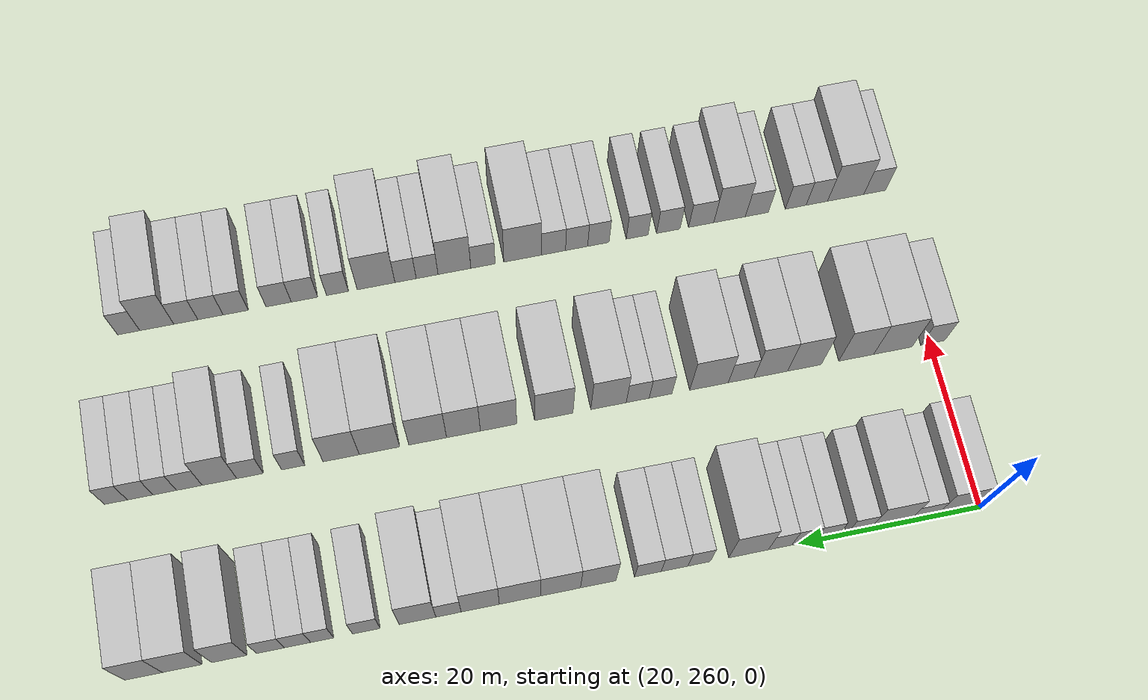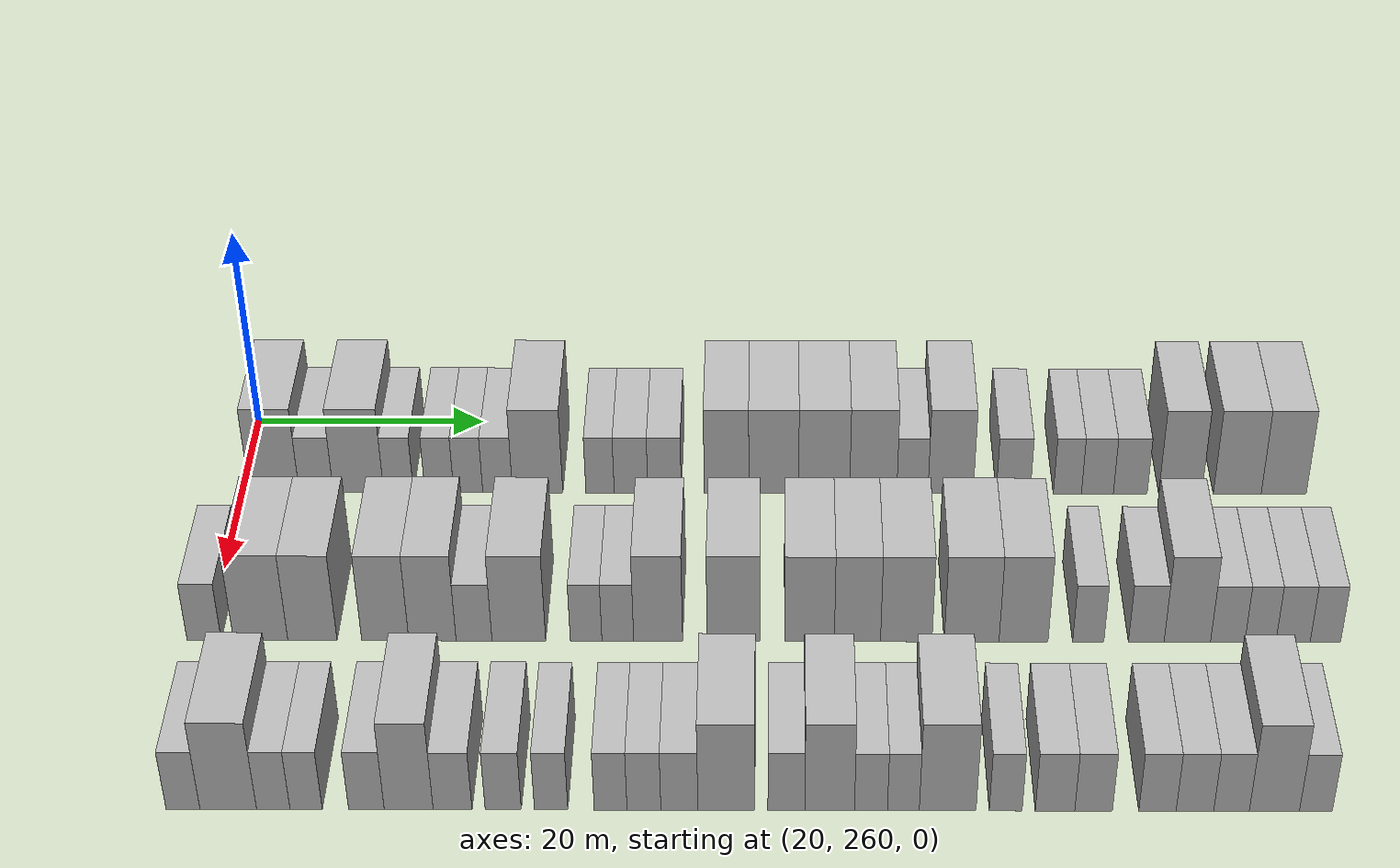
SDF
<sdf version="1.6">
 <world name="default">
  <model name="building_142">
   <static>1</static>
   <pose>25.0000 262.7452 0 0.000000 0.000000 0.000000</pose>
   <link name="link">
    <pose>0 0 4.50 0 0 0</pose>
    <collision name="collision"><geometry><box><size>10.0000 4.3088 9.0000</size></box></geometry></collision>
    <visual name="visual">
     <cast_shadows>0</cast_shadows>
     <geometry><box><size>10.0000 4.3088 9.0000</size></box></geometry>
     <material>
      <script>
       <uri>model://HANNAS_wall/materials/scripts</uri>
       <uri>model://HANNAS_wall/materials/textures</uri>
       <name>vrc/HANNAS_wall</name>
      </script>
     </material>
    </visual>
   </link>
  </model>
  <model name="building_143">
   <static>1</static>
   <pose>25.0000 266.3724 0 0.000000 0.000000 0.000000</pose>
   <link name="link">
    <pose>0 0 3.00 0 0 0</pose>
    <collision name="collision"><geometry><box><size>10.0000 2.9457 6.0000</size></box></geometry></collision>
    <visual name="visual">
     <cast_shadows>0</cast_shadows>
     <geometry><box><size>10.0000 2.9457 6.0000</size></box></geometry>
     <material>
      <script>
       <uri>model://HANNAS_wall/materials/scripts</uri>
       <uri>model://HANNAS_wall/materials/textures</uri>
       <name>vrc/HANNAS_wall</name>
      </script>
     </material>
    </visual>
   </link>
  </model>
  <model name="building_144">
   <static>1</static>
   <pose>25.0000 270.0261 0 0.000000 0.000000 0.000000</pose>
   <link name="link">
    <pose>0 0 4.50 0 0 0</pose>
    <collision name="collision"><geometry><box><size>10.0000 4.3617 9.0000</size></box></geometry></collision>
    <visual name="visual">
     <cast_shadows>0</cast_shadows>
     <geometry><box><size>10.0000 4.3617 9.0000</size></box></geometry>
     <material>
      <script>
       <uri>model://HANNAS_wall/materials/scripts</uri>
       <uri>model://HANNAS_wall/materials/textures</uri>
       <name>vrc/HANNAS_wall</name>
      </script>
     </material>
    </visual>
   </link>
  </model>
  <model name="building_145">
   <static>1</static>
   <pose>25.0000 273.4916 0 0.000000 0.000000 0.000000</pose>
   <link name="link">
    <pose>0 0 3.00 0 0 0</pose>
    <collision name="collision"><geometry><box><size>10.0000 2.5693 6.0000</size></box></geometry></collision>
    <visual name="visual">
     <cast_shadows>0</cast_shadows>
     <geometry><box><size>10.0000 2.5693 6.0000</size></box></geometry>
     <material>
      <script>
       <uri>model://HANNAS_wall/materials/scripts</uri>
       <uri>model://HANNAS_wall/materials/textures</uri>
       <name>vrc/HANNAS_wall</name>
      </script>
     </material>
    </visual>
   </link>
  </model>
  <model name="building_146">
   <static>1</static>
   <pose>25.0000 277.0207 0 0.000000 0.000000 0.000000</pose>
   <link name="link">
    <pose>0 0 3.00 0 0 0</pose>
    <collision name="collision"><geometry><box><size>10.0000 2.4890 6.0000</size></box></geometry></collision>
    <visual name="visual">
     <cast_shadows>0</cast_shadows>
     <geometry><box><size>10.0000 2.4890 6.0000</size></box></geometry>
     <material>
      <script>
       <uri>model://HANNAS_wall/materials/scripts</uri>
       <uri>model://HANNAS_wall/materials/textures</uri>
       <name>vrc/HANNAS_wall</name>
      </script>
     </material>
    </visual>
   </link>
  </model>
  <model name="building_147">
   <static>1</static>
   <pose>25.0000 279.5189 0 0.000000 0.000000 0.000000</pose>
   <link name="link">
    <pose>0 0 3.00 0 0 0</pose>
    <collision name="collision"><geometry><box><size>10.0000 2.5074 6.0000</size></box></geometry></collision>
    <visual name="visual">
     <cast_shadows>0</cast_shadows>
     <geometry><box><size>10.0000 2.5074 6.0000</size></box></geometry>
     <material>
      <script>
       <uri>model://HANNAS_wall/materials/scripts</uri>
       <uri>model://HANNAS_wall/materials/textures</uri>
       <name>vrc/HANNAS_wall</name>
      </script>
     </material>
    </visual>
   </link>
  </model>
  <model name="building_148">
   <static>1</static>
   <pose>25.0000 282.0628 0 0.000000 0.000000 0.000000</pose>
   <link name="link">
    <pose>0 0 3.00 0 0 0</pose>
    <collision name="collision"><geometry><box><size>10.0000 2.5806 6.0000</size></box></geometry></collision>
    <visual name="visual">
     <cast_shadows>0</cast_shadows>
     <geometry><box><size>10.0000 2.5806 6.0000</size></box></geometry>
     <material>
      <script>
       <uri>model://HANNAS_wall/materials/scripts</uri>
       <uri>model://HANNAS_wall/materials/textures</uri>
       <name>vrc/HANNAS_wall</name>
      </script>
     </material>
    </visual>
   </link>
  </model>
  <model name="building_149">
   <static>1</static>
   <pose>25.0000 285.5217 0 0.000000 0.000000 0.000000</pose>
   <link name="link">
    <pose>0 0 4.50 0 0 0</pose>
    <collision name="collision"><geometry><box><size>10.0000 4.3372 9.0000</size></box></geometry></collision>
    <visual name="visual">
     <cast_shadows>0</cast_shadows>
     <geometry><box><size>10.0000 4.3372 9.0000</size></box></geometry>
     <material>
      <script>
       <uri>model://HANNAS_wall/materials/scripts</uri>
       <uri>model://HANNAS_wall/materials/textures</uri>
       <name>vrc/HANNAS_wall</name>
      </script>
     </material>
    </visual>
   </link>
  </model>
  <model name="building_150">
   <static>1</static>
   <pose>25.0000 290.9131 0 0.000000 0.000000 0.000000</pose>
   <link name="link">
    <pose>0 0 3.00 0 0 0</pose>
    <collision name="collision"><geometry><box><size>10.0000 2.4456 6.0000</size></box></geometry></collision>
    <visual name="visual">
     <cast_shadows>0</cast_shadows>
     <geometry><box><size>10.0000 2.4456 6.0000</size></box></geometry>
     <material>
      <script>
       <uri>model://HANNAS_wall/materials/scripts</uri>
       <uri>model://HANNAS_wall/materials/textures</uri>
       <name>vrc/HANNAS_wall</name>
      </script>
     </material>
    </visual>
   </link>
  </model>
  <model name="building_151">
   <static>1</static>
   <pose>25.0000 293.5924 0 0.000000 0.000000 0.000000</pose>
   <link name="link">
    <pose>0 0 3.00 0 0 0</pose>
    <collision name="collision"><geometry><box><size>10.0000 2.9130 6.0000</size></box></geometry></collision>
    <visual name="visual">
     <cast_shadows>0</cast_shadows>
     <geometry><box><size>10.0000 2.9130 6.0000</size></box></geometry>
     <material>
      <script>
       <uri>model://HANNAS_wall/materials/scripts</uri>
       <uri>model://HANNAS_wall/materials/textures</uri>
       <name>vrc/HANNAS_wall</name>
      </script>
     </material>
    </visual>
   </link>
  </model>
  <model name="building_152">
   <static>1</static>
   <pose>25.0000 296.4909 0 0.000000 0.000000 0.000000</pose>
   <link name="link">
    <pose>0 0 3.00 0 0 0</pose>
    <collision name="collision"><geometry><box><size>10.0000 2.8841 6.0000</size></box></geometry></collision>
    <visual name="visual">
     <cast_shadows>0</cast_shadows>
     <geometry><box><size>10.0000 2.8841 6.0000</size></box></geometry>
     <material>
      <script>
       <uri>model://HANNAS_wall/materials/scripts</uri>
       <uri>model://HANNAS_wall/materials/textures</uri>
       <name>vrc/HANNAS_wall</name>
      </script>
     </material>
    </visual>
   </link>
  </model>
  <model name="building_153">
   <static>1</static>
   <pose>25.0000 301.8531 0 0.000000 0.000000 0.000000</pose>
   <link name="link">
    <pose>0 0 4.50 0 0 0</pose>
    <collision name="collision"><geometry><box><size>10.0000 3.8403 9.0000</size></box></geometry></collision>
    <visual name="visual">
     <cast_shadows>0</cast_shadows>
     <geometry><box><size>10.0000 3.8403 9.0000</size></box></geometry>
     <material>
      <script>
       <uri>model://HANNAS_wall/materials/scripts</uri>
       <uri>model://HANNAS_wall/materials/textures</uri>
       <name>vrc/HANNAS_wall</name>
      </script>
     </material>
    </visual>
   </link>
  </model>
  <model name="building_154">
   <static>1</static>
   <pose>25.0000 305.9178 0 0.000000 0.000000 0.000000</pose>
   <link name="link">
    <pose>0 0 4.50 0 0 0</pose>
    <collision name="collision"><geometry><box><size>10.0000 4.2889 9.0000</size></box></geometry></collision>
    <visual name="visual">
     <cast_shadows>0</cast_shadows>
     <geometry><box><size>10.0000 4.2889 9.0000</size></box></geometry>
     <material>
      <script>
       <uri>model://HANNAS_wall/materials/scripts</uri>
       <uri>model://HANNAS_wall/materials/textures</uri>
       <name>vrc/HANNAS_wall</name>
      </script>
     </material>
    </visual>
   </link>
  </model>
  <model name="building_155">
   <static>1</static>
   <pose>25.0000 310.2695 0 0.000000 0.000000 0.000000</pose>
   <link name="link">
    <pose>0 0 4.50 0 0 0</pose>
    <collision name="collision"><geometry><box><size>10.0000 4.4145 9.0000</size></box></geometry></collision>
    <visual name="visual">
     <cast_shadows>0</cast_shadows>
     <geometry><box><size>10.0000 4.4145 9.0000</size></box></geometry>
     <material>
      <script>
       <uri>model://HANNAS_wall/materials/scripts</uri>
       <uri>model://HANNAS_wall/materials/textures</uri>
       <name>vrc/HANNAS_wall</name>
      </script>
     </material>
    </visual>
   </link>
  </model>
  <model name="building_156">
   <static>1</static>
   <pose>25.0000 314.5128 0 0.000000 0.000000 0.000000</pose>
   <link name="link">
    <pose>0 0 4.50 0 0 0</pose>
    <collision name="collision"><geometry><box><size>10.0000 4.0723 9.0000</size></box></geometry></collision>
    <visual name="visual">
     <cast_shadows>0</cast_shadows>
     <geometry><box><size>10.0000 4.0723 9.0000</size></box></geometry>
     <material>
      <script>
       <uri>model://HANNAS_wall/materials/scripts</uri>
       <uri>model://HANNAS_wall/materials/textures</uri>
       <name>vrc/HANNAS_wall</name>
      </script>
     </material>
    </visual>
   </link>
  </model>
  <model name="building_157">
   <static>1</static>
   <pose>25.0000 317.8948 0 0.000000 0.000000 0.000000</pose>
   <link name="link">
    <pose>0 0 3.00 0 0 0</pose>
    <collision name="collision"><geometry><box><size>10.0000 2.6916 6.0000</size></box></geometry></collision>
    <visual name="visual">
     <cast_shadows>0</cast_shadows>
     <geometry><box><size>10.0000 2.6916 6.0000</size></box></geometry>
     <material>
      <script>
       <uri>model://HANNAS_wall/materials/scripts</uri>
       <uri>model://HANNAS_wall/materials/textures</uri>
       <name>vrc/HANNAS_wall</name>
      </script>
     </material>
    </visual>
   </link>
  </model>
  <model name="building_158">
   <static>1</static>
   <pose>25.0000 321.1952 0 0.000000 0.000000 0.000000</pose>
   <link name="link">
    <pose>0 0 4.50 0 0 0</pose>
    <collision name="collision"><geometry><box><size>10.0000 3.9093 9.0000</size></box></geometry></collision>
    <visual name="visual">
     <cast_shadows>0</cast_shadows>
     <geometry><box><size>10.0000 3.9093 9.0000</size></box></geometry>
     <material>
      <script>
       <uri>model://HANNAS_wall/materials/scripts</uri>
       <uri>model://HANNAS_wall/materials/textures</uri>
       <name>vrc/HANNAS_wall</name>
      </script>
     </material>
    </visual>
   </link>
  </model>
  <model name="building_159">
   <static>1</static>
   <pose>25.0000 326.6145 0 0.000000 0.000000 0.000000</pose>
   <link name="link">
    <pose>0 0 3.00 0 0 0</pose>
    <collision name="collision"><geometry><box><size>10.0000 2.9293 6.0000</size></box></geometry></collision>
    <visual name="visual">
     <cast_shadows>0</cast_shadows>
     <geometry><box><size>10.0000 2.9293 6.0000</size></box></geometry>
     <material>
      <script>
       <uri>model://HANNAS_wall/materials/scripts</uri>
       <uri>model://HANNAS_wall/materials/textures</uri>
       <name>vrc/HANNAS_wall</name>
      </script>
     </material>
    </visual>
   </link>
  </model>
  <model name="building_160">
   <static>1</static>
   <pose>25.0000 331.2918 0 0.000000 0.000000 0.000000</pose>
   <link name="link">
    <pose>0 0 3.00 0 0 0</pose>
    <collision name="collision"><geometry><box><size>10.0000 2.4254 6.0000</size></box></geometry></collision>
    <visual name="visual">
     <cast_shadows>0</cast_shadows>
     <geometry><box><size>10.0000 2.4254 6.0000</size></box></geometry>
     <material>
      <script>
       <uri>model://HANNAS_wall/materials/scripts</uri>
       <uri>model://HANNAS_wall/materials/textures</uri>
       <name>vrc/HANNAS_wall</name>
      </script>
     </material>
    </visual>
   </link>
  </model>
  <model name="building_161">
   <static>1</static>
   <pose>25.0000 333.8823 0 0.000000 0.000000 0.000000</pose>
   <link name="link">
    <pose>0 0 3.00 0 0 0</pose>
    <collision name="collision"><geometry><box><size>10.0000 2.7556 6.0000</size></box></geometry></collision>
    <visual name="visual">
     <cast_shadows>0</cast_shadows>
     <geometry><box><size>10.0000 2.7556 6.0000</size></box></geometry>
     <material>
      <script>
       <uri>model://HANNAS_wall/materials/scripts</uri>
       <uri>model://HANNAS_wall/materials/textures</uri>
       <name>vrc/HANNAS_wall</name>
      </script>
     </material>
    </visual>
   </link>
  </model>
  <model name="building_162">
   <static>1</static>
   <pose>25.0000 336.7186 0 0.000000 0.000000 0.000000</pose>
   <link name="link">
    <pose>0 0 3.00 0 0 0</pose>
    <collision name="collision"><geometry><box><size>10.0000 2.9170 6.0000</size></box></geometry></collision>
    <visual name="visual">
     <cast_shadows>0</cast_shadows>
     <geometry><box><size>10.0000 2.9170 6.0000</size></box></geometry>
     <material>
      <script>
       <uri>model://HANNAS_wall/materials/scripts</uri>
       <uri>model://HANNAS_wall/materials/textures</uri>
       <name>vrc/HANNAS_wall</name>
      </script>
     </material>
    </visual>
   </link>
  </model>
  <model name="building_163">
   <static>1</static>
   <pose>25.0000 341.0371 0 0.000000 0.000000 0.000000</pose>
   <link name="link">
    <pose>0 0 4.50 0 0 0</pose>
    <collision name="collision"><geometry><box><size>10.0000 3.7200 9.0000</size></box></geometry></collision>
    <visual name="visual">
     <cast_shadows>0</cast_shadows>
     <geometry><box><size>10.0000 3.7200 9.0000</size></box></geometry>
     <material>
      <script>
       <uri>model://HANNAS_wall/materials/scripts</uri>
       <uri>model://HANNAS_wall/materials/textures</uri>
       <name>vrc/HANNAS_wall</name>
      </script>
     </material>
    </visual>
   </link>
  </model>
  <model name="building_164">
   <static>1</static>
   <pose>25.0000 345.9659 0 0.000000 0.000000 0.000000</pose>
   <link name="link">
    <pose>0 0 4.50 0 0 0</pose>
    <collision name="collision"><geometry><box><size>10.0000 4.1377 9.0000</size></box></geometry></collision>
    <visual name="visual">
     <cast_shadows>0</cast_shadows>
     <geometry><box><size>10.0000 4.1377 9.0000</size></box></geometry>
     <material>
      <script>
       <uri>model://HANNAS_wall/materials/scripts</uri>
       <uri>model://HANNAS_wall/materials/textures</uri>
       <name>vrc/HANNAS_wall</name>
      </script>
     </material>
    </visual>
   </link>
  </model>
  <model name="building_165">
   <static>1</static>
   <pose>25.0000 349.9780 0 0.000000 0.000000 0.000000</pose>
   <link name="link">
    <pose>0 0 4.50 0 0 0</pose>
    <collision name="collision"><geometry><box><size>10.0000 3.8864 9.0000</size></box></geometry></collision>
    <visual name="visual">
     <cast_shadows>0</cast_shadows>
     <geometry><box><size>10.0000 3.8864 9.0000</size></box></geometry>
     <material>
      <script>
       <uri>model://HANNAS_wall/materials/scripts</uri>
       <uri>model://HANNAS_wall/materials/textures</uri>
       <name>vrc/HANNAS_wall</name>
      </script>
     </material>
    </visual>
   </link>
  </model>
  <model name="building_309">
   <static>1</static>
   <pose>44.0000 259.6902 0 0.000000 0.000000 0.000000</pose>
   <link name="link">
    <pose>0 0 3.00 0 0 0</pose>
    <collision name="collision"><geometry><box><size>10.0000 2.7738 6.0000</size></box></geometry></collision>
    <visual name="visual">
     <cast_shadows>0</cast_shadows>
     <geometry><box><size>10.0000 2.7738 6.0000</size></box></geometry>
     <material>
      <script>
       <uri>model://HANNAS_wall/materials/scripts</uri>
       <uri>model://HANNAS_wall/materials/textures</uri>
       <name>vrc/HANNAS_wall</name>
      </script>
     </material>
    </visual>
   </link>
  </model>
  <model name="building_310">
   <static>1</static>
   <pose>44.0000 264.2830 0 0.000000 0.000000 0.000000</pose>
   <link name="link">
    <pose>0 0 4.50 0 0 0</pose>
    <collision name="collision"><geometry><box><size>10.0000 4.4116 9.0000</size></box></geometry></collision>
    <visual name="visual">
     <cast_shadows>0</cast_shadows>
     <geometry><box><size>10.0000 4.4116 9.0000</size></box></geometry>
     <material>
      <script>
       <uri>model://HANNAS_wall/materials/scripts</uri>
       <uri>model://HANNAS_wall/materials/textures</uri>
       <name>vrc/HANNAS_wall</name>
      </script>
     </material>
    </visual>
   </link>
  </model>
  <model name="building_311">
   <static>1</static>
   <pose>44.0000 268.4880 0 0.000000 0.000000 0.000000</pose>
   <link name="link">
    <pose>0 0 4.50 0 0 0</pose>
    <collision name="collision"><geometry><box><size>10.0000 3.9985 9.0000</size></box></geometry></collision>
    <visual name="visual">
     <cast_shadows>0</cast_shadows>
     <geometry><box><size>10.0000 3.9985 9.0000</size></box></geometry>
     <material>
      <script>
       <uri>model://HANNAS_wall/materials/scripts</uri>
       <uri>model://HANNAS_wall/materials/textures</uri>
       <name>vrc/HANNAS_wall</name>
      </script>
     </material>
    </visual>
   </link>
  </model>
  <model name="building_312">
   <static>1</static>
   <pose>44.0000 274.3988 0 0.000000 0.000000 0.000000</pose>
   <link name="link">
    <pose>0 0 4.50 0 0 0</pose>
    <collision name="collision"><geometry><box><size>10.0000 3.8230 9.0000</size></box></geometry></collision>
    <visual name="visual">
     <cast_shadows>0</cast_shadows>
     <geometry><box><size>10.0000 3.8230 9.0000</size></box></geometry>
     <material>
      <script>
       <uri>model://HANNAS_wall/materials/scripts</uri>
       <uri>model://HANNAS_wall/materials/textures</uri>
       <name>vrc/HANNAS_wall</name>
      </script>
     </material>
    </visual>
   </link>
  </model>
  <model name="building_313">
   <static>1</static>
   <pose>44.0000 278.2295 0 0.000000 0.000000 0.000000</pose>
   <link name="link">
    <pose>0 0 4.50 0 0 0</pose>
    <collision name="collision"><geometry><box><size>10.0000 3.8385 9.0000</size></box></geometry></collision>
    <visual name="visual">
     <cast_shadows>0</cast_shadows>
     <geometry><box><size>10.0000 3.8385 9.0000</size></box></geometry>
     <material>
      <script>
       <uri>model://HANNAS_wall/materials/scripts</uri>
       <uri>model://HANNAS_wall/materials/textures</uri>
       <name>vrc/HANNAS_wall</name>
      </script>
     </material>
    </visual>
   </link>
  </model>
  <model name="building_314">
   <static>1</static>
   <pose>44.0000 281.6064 0 0.000000 0.000000 0.000000</pose>
   <link name="link">
    <pose>0 0 3.00 0 0 0</pose>
    <collision name="collision"><geometry><box><size>10.0000 2.9152 6.0000</size></box></geometry></collision>
    <visual name="visual">
     <cast_shadows>0</cast_shadows>
     <geometry><box><size>10.0000 2.9152 6.0000</size></box></geometry>
     <material>
      <script>
       <uri>model://HANNAS_wall/materials/scripts</uri>
       <uri>model://HANNAS_wall/materials/textures</uri>
       <name>vrc/HANNAS_wall</name>
      </script>
     </material>
    </visual>
   </link>
  </model>
  <model name="building_315">
   <static>1</static>
   <pose>44.0000 285.2445 0 0.000000 0.000000 0.000000</pose>
   <link name="link">
    <pose>0 0 4.50 0 0 0</pose>
    <collision name="collision"><geometry><box><size>10.0000 4.3610 9.0000</size></box></geometry></collision>
    <visual name="visual">
     <cast_shadows>0</cast_shadows>
     <geometry><box><size>10.0000 4.3610 9.0000</size></box></geometry>
     <material>
      <script>
       <uri>model://HANNAS_wall/materials/scripts</uri>
       <uri>model://HANNAS_wall/materials/textures</uri>
       <name>vrc/HANNAS_wall</name>
      </script>
     </material>
    </visual>
   </link>
  </model>
  <model name="building_316">
   <static>1</static>
   <pose>44.0000 290.7055 0 0.000000 0.000000 0.000000</pose>
   <link name="link">
    <pose>0 0 3.00 0 0 0</pose>
    <collision name="collision"><geometry><box><size>10.0000 2.5611 6.0000</size></box></geometry></collision>
    <visual name="visual">
     <cast_shadows>0</cast_shadows>
     <geometry><box><size>10.0000 2.5611 6.0000</size></box></geometry>
     <material>
      <script>
       <uri>model://HANNAS_wall/materials/scripts</uri>
       <uri>model://HANNAS_wall/materials/textures</uri>
       <name>vrc/HANNAS_wall</name>
      </script>
     </material>
    </visual>
   </link>
  </model>
  <model name="building_317">
   <static>1</static>
   <pose>44.0000 293.2766 0 0.000000 0.000000 0.000000</pose>
   <link name="link">
    <pose>0 0 3.00 0 0 0</pose>
    <collision name="collision"><geometry><box><size>10.0000 2.5810 6.0000</size></box></geometry></collision>
    <visual name="visual">
     <cast_shadows>0</cast_shadows>
     <geometry><box><size>10.0000 2.5810 6.0000</size></box></geometry>
     <material>
      <script>
       <uri>model://HANNAS_wall/materials/scripts</uri>
       <uri>model://HANNAS_wall/materials/textures</uri>
       <name>vrc/HANNAS_wall</name>
      </script>
     </material>
    </visual>
   </link>
  </model>
  <model name="building_318">
   <static>1</static>
   <pose>44.0000 296.5535 0 0.000000 0.000000 0.000000</pose>
   <link name="link">
    <pose>0 0 4.50 0 0 0</pose>
    <collision name="collision"><geometry><box><size>10.0000 3.9728 9.0000</size></box></geometry></collision>
    <visual name="visual">
     <cast_shadows>0</cast_shadows>
     <geometry><box><size>10.0000 3.9728 9.0000</size></box></geometry>
     <material>
      <script>
       <uri>model://HANNAS_wall/materials/scripts</uri>
       <uri>model://HANNAS_wall/materials/textures</uri>
       <name>vrc/HANNAS_wall</name>
      </script>
     </material>
    </visual>
   </link>
  </model>
  <model name="building_319">
   <static>1</static>
   <pose>44.0000 302.6775 0 0.000000 0.000000 0.000000</pose>
   <link name="link">
    <pose>0 0 4.50 0 0 0</pose>
    <collision name="collision"><geometry><box><size>10.0000 4.2751 9.0000</size></box></geometry></collision>
    <visual name="visual">
     <cast_shadows>0</cast_shadows>
     <geometry><box><size>10.0000 4.2751 9.0000</size></box></geometry>
     <material>
      <script>
       <uri>model://HANNAS_wall/materials/scripts</uri>
       <uri>model://HANNAS_wall/materials/textures</uri>
       <name>vrc/HANNAS_wall</name>
      </script>
     </material>
    </visual>
   </link>
  </model>
  <model name="building_320">
   <static>1</static>
   <pose>44.0000 308.8285 0 0.000000 0.000000 0.000000</pose>
   <link name="link">
    <pose>0 0 4.50 0 0 0</pose>
    <collision name="collision"><geometry><box><size>10.0000 4.0270 9.0000</size></box></geometry></collision>
    <visual name="visual">
     <cast_shadows>0</cast_shadows>
     <geometry><box><size>10.0000 4.0270 9.0000</size></box></geometry>
     <material>
      <script>
       <uri>model://HANNAS_wall/materials/scripts</uri>
       <uri>model://HANNAS_wall/materials/textures</uri>
       <name>vrc/HANNAS_wall</name>
      </script>
     </material>
    </visual>
   </link>
  </model>
  <model name="building_321">
   <static>1</static>
   <pose>44.0000 312.7145 0 0.000000 0.000000 0.000000</pose>
   <link name="link">
    <pose>0 0 4.50 0 0 0</pose>
    <collision name="collision"><geometry><box><size>10.0000 3.7449 9.0000</size></box></geometry></collision>
    <visual name="visual">
     <cast_shadows>0</cast_shadows>
     <geometry><box><size>10.0000 3.7449 9.0000</size></box></geometry>
     <material>
      <script>
       <uri>model://HANNAS_wall/materials/scripts</uri>
       <uri>model://HANNAS_wall/materials/textures</uri>
       <name>vrc/HANNAS_wall</name>
      </script>
     </material>
    </visual>
   </link>
  </model>
  <model name="building_322">
   <static>1</static>
   <pose>44.0000 316.6725 0 0.000000 0.000000 0.000000</pose>
   <link name="link">
    <pose>0 0 4.50 0 0 0</pose>
    <collision name="collision"><geometry><box><size>10.0000 4.1711 9.0000</size></box></geometry></collision>
    <visual name="visual">
     <cast_shadows>0</cast_shadows>
     <geometry><box><size>10.0000 4.1711 9.0000</size></box></geometry>
     <material>
      <script>
       <uri>model://HANNAS_wall/materials/scripts</uri>
       <uri>model://HANNAS_wall/materials/textures</uri>
       <name>vrc/HANNAS_wall</name>
      </script>
     </material>
    </visual>
   </link>
  </model>
  <model name="building_323">
   <static>1</static>
   <pose>44.0000 321.9786 0 0.000000 0.000000 0.000000</pose>
   <link name="link">
    <pose>0 0 4.50 0 0 0</pose>
    <collision name="collision"><geometry><box><size>10.0000 4.4411 9.0000</size></box></geometry></collision>
    <visual name="visual">
     <cast_shadows>0</cast_shadows>
     <geometry><box><size>10.0000 4.4411 9.0000</size></box></geometry>
     <material>
      <script>
       <uri>model://HANNAS_wall/materials/scripts</uri>
       <uri>model://HANNAS_wall/materials/textures</uri>
       <name>vrc/HANNAS_wall</name>
      </script>
     </material>
    </visual>
   </link>
  </model>
  <model name="building_324">
   <static>1</static>
   <pose>44.0000 326.1851 0 0.000000 0.000000 0.000000</pose>
   <link name="link">
    <pose>0 0 4.50 0 0 0</pose>
    <collision name="collision"><geometry><box><size>10.0000 3.9719 9.0000</size></box></geometry></collision>
    <visual name="visual">
     <cast_shadows>0</cast_shadows>
     <geometry><box><size>10.0000 3.9719 9.0000</size></box></geometry>
     <material>
      <script>
       <uri>model://HANNAS_wall/materials/scripts</uri>
       <uri>model://HANNAS_wall/materials/textures</uri>
       <name>vrc/HANNAS_wall</name>
      </script>
     </material>
    </visual>
   </link>
  </model>
  <model name="building_325">
   <static>1</static>
   <pose>44.0000 331.4353 0 0.000000 0.000000 0.000000</pose>
   <link name="link">
    <pose>0 0 3.00 0 0 0</pose>
    <collision name="collision"><geometry><box><size>10.0000 2.5284 6.0000</size></box></geometry></collision>
    <visual name="visual">
     <cast_shadows>0</cast_shadows>
     <geometry><box><size>10.0000 2.5284 6.0000</size></box></geometry>
     <material>
      <script>
       <uri>model://HANNAS_wall/materials/scripts</uri>
       <uri>model://HANNAS_wall/materials/textures</uri>
       <name>vrc/HANNAS_wall</name>
      </script>
     </material>
    </visual>
   </link>
  </model>
  <model name="building_326">
   <static>1</static>
   <pose>44.0000 336.1439 0 0.000000 0.000000 0.000000</pose>
   <link name="link">
    <pose>0 0 3.00 0 0 0</pose>
    <collision name="collision"><geometry><box><size>10.0000 2.8888 6.0000</size></box></geometry></collision>
    <visual name="visual">
     <cast_shadows>0</cast_shadows>
     <geometry><box><size>10.0000 2.8888 6.0000</size></box></geometry>
     <material>
      <script>
       <uri>model://HANNAS_wall/materials/scripts</uri>
       <uri>model://HANNAS_wall/materials/textures</uri>
       <name>vrc/HANNAS_wall</name>
      </script>
     </material>
    </visual>
   </link>
  </model>
  <model name="building_327">
   <static>1</static>
   <pose>44.0000 339.4693 0 0.000000 0.000000 0.000000</pose>
   <link name="link">
    <pose>0 0 4.50 0 0 0</pose>
    <collision name="collision"><geometry><box><size>10.0000 3.7621 9.0000</size></box></geometry></collision>
    <visual name="visual">
     <cast_shadows>0</cast_shadows>
     <geometry><box><size>10.0000 3.7621 9.0000</size></box></geometry>
     <material>
      <script>
       <uri>model://HANNAS_wall/materials/scripts</uri>
       <uri>model://HANNAS_wall/materials/textures</uri>
       <name>vrc/HANNAS_wall</name>
      </script>
     </material>
    </visual>
   </link>
  </model>
  <model name="building_328">
   <static>1</static>
   <pose>44.0000 342.7407 0 0.000000 0.000000 0.000000</pose>
   <link name="link">
    <pose>0 0 3.00 0 0 0</pose>
    <collision name="collision"><geometry><box><size>10.0000 2.7807 6.0000</size></box></geometry></collision>
    <visual name="visual">
     <cast_shadows>0</cast_shadows>
     <geometry><box><size>10.0000 2.7807 6.0000</size></box></geometry>
     <material>
      <script>
       <uri>model://HANNAS_wall/materials/scripts</uri>
       <uri>model://HANNAS_wall/materials/textures</uri>
       <name>vrc/HANNAS_wall</name>
      </script>
     </material>
    </visual>
   </link>
  </model>
  <model name="building_329">
   <static>1</static>
   <pose>44.0000 345.3920 0 0.000000 0.000000 0.000000</pose>
   <link name="link">
    <pose>0 0 3.00 0 0 0</pose>
    <collision name="collision"><geometry><box><size>10.0000 2.5219 6.0000</size></box></geometry></collision>
    <visual name="visual">
     <cast_shadows>0</cast_shadows>
     <geometry><box><size>10.0000 2.5219 6.0000</size></box></geometry>
     <material>
      <script>
       <uri>model://HANNAS_wall/materials/scripts</uri>
       <uri>model://HANNAS_wall/materials/textures</uri>
       <name>vrc/HANNAS_wall</name>
      </script>
     </material>
    </visual>
   </link>
  </model>
  <model name="building_330">
   <static>1</static>
   <pose>44.0000 348.0430 0 0.000000 0.000000 0.000000</pose>
   <link name="link">
    <pose>0 0 3.00 0 0 0</pose>
    <collision name="collision"><geometry><box><size>10.0000 2.7799 6.0000</size></box></geometry></collision>
    <visual name="visual">
     <cast_shadows>0</cast_shadows>
     <geometry><box><size>10.0000 2.7799 6.0000</size></box></geometry>
     <material>
      <script>
       <uri>model://HANNAS_wall/materials/scripts</uri>
       <uri>model://HANNAS_wall/materials/textures</uri>
       <name>vrc/HANNAS_wall</name>
      </script>
     </material>
    </visual>
   </link>
  </model>
  <model name="building_331">
   <static>1</static>
   <pose>44.0000 350.6636 0 0.000000 0.000000 0.000000</pose>
   <link name="link">
    <pose>0 0 3.00 0 0 0</pose>
    <collision name="collision"><geometry><box><size>10.0000 2.4613 6.0000</size></box></geometry></collision>
    <visual name="visual">
     <cast_shadows>0</cast_shadows>
     <geometry><box><size>10.0000 2.4613 6.0000</size></box></geometry>
     <material>
      <script>
       <uri>model://HANNAS_wall/materials/scripts</uri>
       <uri>model://HANNAS_wall/materials/textures</uri>
       <name>vrc/HANNAS_wall</name>
      </script>
     </material>
    </visual>
   </link>
  </model>
  <model name="building_470">
   <static>1</static>
   <pose>63.0000 261.1037 0 0.000000 0.000000 0.000000</pose>
   <link name="link">
    <pose>0 0 3.00 0 0 0</pose>
    <collision name="collision"><geometry><box><size>10.0000 2.5719 6.0000</size></box></geometry></collision>
    <visual name="visual">
     <cast_shadows>0</cast_shadows>
     <geometry><box><size>10.0000 2.5719 6.0000</size></box></geometry>
     <material>
      <script>
       <uri>model://HANNAS_wall/materials/scripts</uri>
       <uri>model://HANNAS_wall/materials/textures</uri>
       <name>vrc/HANNAS_wall</name>
      </script>
     </material>
    </visual>
   </link>
  </model>
  <model name="building_471">
   <static>1</static>
   <pose>63.0000 264.5363 0 0.000000 0.000000 0.000000</pose>
   <link name="link">
    <pose>0 0 4.50 0 0 0</pose>
    <collision name="collision"><geometry><box><size>10.0000 4.2932 9.0000</size></box></geometry></collision>
    <visual name="visual">
     <cast_shadows>0</cast_shadows>
     <geometry><box><size>10.0000 4.2932 9.0000</size></box></geometry>
     <material>
      <script>
       <uri>model://HANNAS_wall/materials/scripts</uri>
       <uri>model://HANNAS_wall/materials/textures</uri>
       <name>vrc/HANNAS_wall</name>
      </script>
     </material>
    </visual>
   </link>
  </model>
  <model name="building_472">
   <static>1</static>
   <pose>63.0000 267.9541 0 0.000000 0.000000 0.000000</pose>
   <link name="link">
    <pose>0 0 3.00 0 0 0</pose>
    <collision name="collision"><geometry><box><size>10.0000 2.5422 6.0000</size></box></geometry></collision>
    <visual name="visual">
     <cast_shadows>0</cast_shadows>
     <geometry><box><size>10.0000 2.5422 6.0000</size></box></geometry>
     <material>
      <script>
       <uri>model://HANNAS_wall/materials/scripts</uri>
       <uri>model://HANNAS_wall/materials/textures</uri>
       <name>vrc/HANNAS_wall</name>
      </script>
     </material>
    </visual>
   </link>
  </model>
  <model name="building_473">
   <static>1</static>
   <pose>63.0000 270.4513 0 0.000000 0.000000 0.000000</pose>
   <link name="link">
    <pose>0 0 3.00 0 0 0</pose>
    <collision name="collision"><geometry><box><size>10.0000 2.4523 6.0000</size></box></geometry></collision>
    <visual name="visual">
     <cast_shadows>0</cast_shadows>
     <geometry><box><size>10.0000 2.4523 6.0000</size></box></geometry>
     <material>
      <script>
       <uri>model://HANNAS_wall/materials/scripts</uri>
       <uri>model://HANNAS_wall/materials/textures</uri>
       <name>vrc/HANNAS_wall</name>
      </script>
     </material>
    </visual>
   </link>
  </model>
  <model name="building_474">
   <static>1</static>
   <pose>63.0000 275.0273 0 0.000000 0.000000 0.000000</pose>
   <link name="link">
    <pose>0 0 3.00 0 0 0</pose>
    <collision name="collision"><geometry><box><size>10.0000 2.6997 6.0000</size></box></geometry></collision>
    <visual name="visual">
     <cast_shadows>0</cast_shadows>
     <geometry><box><size>10.0000 2.6997 6.0000</size></box></geometry>
     <material>
      <script>
       <uri>model://HANNAS_wall/materials/scripts</uri>
       <uri>model://HANNAS_wall/materials/textures</uri>
       <name>vrc/HANNAS_wall</name>
      </script>
     </material>
    </visual>
   </link>
  </model>
  <model name="building_475">
   <static>1</static>
   <pose>63.0000 278.2351 0 0.000000 0.000000 0.000000</pose>
   <link name="link">
    <pose>0 0 4.50 0 0 0</pose>
    <collision name="collision"><geometry><box><size>10.0000 3.7159 9.0000</size></box></geometry></collision>
    <visual name="visual">
     <cast_shadows>0</cast_shadows>
     <geometry><box><size>10.0000 3.7159 9.0000</size></box></geometry>
     <material>
      <script>
       <uri>model://HANNAS_wall/materials/scripts</uri>
       <uri>model://HANNAS_wall/materials/textures</uri>
       <name>vrc/HANNAS_wall</name>
      </script>
     </material>
    </visual>
   </link>
  </model>
  <model name="building_476">
   <static>1</static>
   <pose>63.0000 281.5677 0 0.000000 0.000000 0.000000</pose>
   <link name="link">
    <pose>0 0 3.00 0 0 0</pose>
    <collision name="collision"><geometry><box><size>10.0000 2.9493 6.0000</size></box></geometry></collision>
    <visual name="visual">
     <cast_shadows>0</cast_shadows>
     <geometry><box><size>10.0000 2.9493 6.0000</size></box></geometry>
     <material>
      <script>
       <uri>model://HANNAS_wall/materials/scripts</uri>
       <uri>model://HANNAS_wall/materials/textures</uri>
       <name>vrc/HANNAS_wall</name>
      </script>
     </material>
    </visual>
   </link>
  </model>
  <model name="building_477">
   <static>1</static>
   <pose>63.0000 285.4120 0 0.000000 0.000000 0.000000</pose>
   <link name="link">
    <pose>0 0 3.00 0 0 0</pose>
    <collision name="collision"><geometry><box><size>10.0000 2.7394 6.0000</size></box></geometry></collision>
    <visual name="visual">
     <cast_shadows>0</cast_shadows>
     <geometry><box><size>10.0000 2.7394 6.0000</size></box></geometry>
     <material>
      <script>
       <uri>model://HANNAS_wall/materials/scripts</uri>
       <uri>model://HANNAS_wall/materials/textures</uri>
       <name>vrc/HANNAS_wall</name>
      </script>
     </material>
    </visual>
   </link>
  </model>
  <model name="building_478">
   <static>1</static>
   <pose>63.0000 289.0492 0 0.000000 0.000000 0.000000</pose>
   <link name="link">
    <pose>0 0 3.00 0 0 0</pose>
    <collision name="collision"><geometry><box><size>10.0000 2.5350 6.0000</size></box></geometry></collision>
    <visual name="visual">
     <cast_shadows>0</cast_shadows>
     <geometry><box><size>10.0000 2.5350 6.0000</size></box></geometry>
     <material>
      <script>
       <uri>model://HANNAS_wall/materials/scripts</uri>
       <uri>model://HANNAS_wall/materials/textures</uri>
       <name>vrc/HANNAS_wall</name>
      </script>
     </material>
    </visual>
   </link>
  </model>
  <model name="building_479">
   <static>1</static>
   <pose>63.0000 293.5592 0 0.000000 0.000000 0.000000</pose>
   <link name="link">
    <pose>0 0 3.00 0 0 0</pose>
    <collision name="collision"><geometry><box><size>10.0000 2.4851 6.0000</size></box></geometry></collision>
    <visual name="visual">
     <cast_shadows>0</cast_shadows>
     <geometry><box><size>10.0000 2.4851 6.0000</size></box></geometry>
     <material>
      <script>
       <uri>model://HANNAS_wall/materials/scripts</uri>
       <uri>model://HANNAS_wall/materials/textures</uri>
       <name>vrc/HANNAS_wall</name>
      </script>
     </material>
    </visual>
   </link>
  </model>
  <model name="building_480">
   <static>1</static>
   <pose>63.0000 296.0866 0 0.000000 0.000000 0.000000</pose>
   <link name="link">
    <pose>0 0 3.00 0 0 0</pose>
    <collision name="collision"><geometry><box><size>10.0000 2.5696 6.0000</size></box></geometry></collision>
    <visual name="visual">
     <cast_shadows>0</cast_shadows>
     <geometry><box><size>10.0000 2.5696 6.0000</size></box></geometry>
     <material>
      <script>
       <uri>model://HANNAS_wall/materials/scripts</uri>
       <uri>model://HANNAS_wall/materials/textures</uri>
       <name>vrc/HANNAS_wall</name>
      </script>
     </material>
    </visual>
   </link>
  </model>
  <model name="building_481">
   <static>1</static>
   <pose>63.0000 298.7772 0 0.000000 0.000000 0.000000</pose>
   <link name="link">
    <pose>0 0 3.00 0 0 0</pose>
    <collision name="collision"><geometry><box><size>10.0000 2.8116 6.0000</size></box></geometry></collision>
    <visual name="visual">
     <cast_shadows>0</cast_shadows>
     <geometry><box><size>10.0000 2.8116 6.0000</size></box></geometry>
     <material>
      <script>
       <uri>model://HANNAS_wall/materials/scripts</uri>
       <uri>model://HANNAS_wall/materials/textures</uri>
       <name>vrc/HANNAS_wall</name>
      </script>
     </material>
    </visual>
   </link>
  </model>
  <model name="building_482">
   <static>1</static>
   <pose>63.0000 302.3365 0 0.000000 0.000000 0.000000</pose>
   <link name="link">
    <pose>0 0 4.50 0 0 0</pose>
    <collision name="collision"><geometry><box><size>10.0000 4.3070 9.0000</size></box></geometry></collision>
    <visual name="visual">
     <cast_shadows>0</cast_shadows>
     <geometry><box><size>10.0000 4.3070 9.0000</size></box></geometry>
     <material>
      <script>
       <uri>model://HANNAS_wall/materials/scripts</uri>
       <uri>model://HANNAS_wall/materials/textures</uri>
       <name>vrc/HANNAS_wall</name>
      </script>
     </material>
    </visual>
   </link>
  </model>
  <model name="building_483">
   <static>1</static>
   <pose>63.0000 306.8852 0 0.000000 0.000000 0.000000</pose>
   <link name="link">
    <pose>0 0 3.00 0 0 0</pose>
    <collision name="collision"><geometry><box><size>10.0000 2.7904 6.0000</size></box></geometry></collision>
    <visual name="visual">
     <cast_shadows>0</cast_shadows>
     <geometry><box><size>10.0000 2.7904 6.0000</size></box></geometry>
     <material>
      <script>
       <uri>model://HANNAS_wall/materials/scripts</uri>
       <uri>model://HANNAS_wall/materials/textures</uri>
       <name>vrc/HANNAS_wall</name>
      </script>
     </material>
    </visual>
   </link>
  </model>
  <model name="building_484">
   <static>1</static>
   <pose>63.0000 310.1642 0 0.000000 0.000000 0.000000</pose>
   <link name="link">
    <pose>0 0 4.50 0 0 0</pose>
    <collision name="collision"><geometry><box><size>10.0000 3.7675 9.0000</size></box></geometry></collision>
    <visual name="visual">
     <cast_shadows>0</cast_shadows>
     <geometry><box><size>10.0000 3.7675 9.0000</size></box></geometry>
     <material>
      <script>
       <uri>model://HANNAS_wall/materials/scripts</uri>
       <uri>model://HANNAS_wall/materials/textures</uri>
       <name>vrc/HANNAS_wall</name>
      </script>
     </material>
    </visual>
   </link>
  </model>
  <model name="building_485">
   <static>1</static>
   <pose>63.0000 313.2983 0 0.000000 0.000000 0.000000</pose>
   <link name="link">
    <pose>0 0 3.00 0 0 0</pose>
    <collision name="collision"><geometry><box><size>10.0000 2.5007 6.0000</size></box></geometry></collision>
    <visual name="visual">
     <cast_shadows>0</cast_shadows>
     <geometry><box><size>10.0000 2.5007 6.0000</size></box></geometry>
     <material>
      <script>
       <uri>model://HANNAS_wall/materials/scripts</uri>
       <uri>model://HANNAS_wall/materials/textures</uri>
       <name>vrc/HANNAS_wall</name>
      </script>
     </material>
    </visual>
   </link>
  </model>
  <model name="building_486">
   <static>1</static>
   <pose>63.0000 315.7583 0 0.000000 0.000000 0.000000</pose>
   <link name="link">
    <pose>0 0 3.00 0 0 0</pose>
    <collision name="collision"><geometry><box><size>10.0000 2.4194 6.0000</size></box></geometry></collision>
    <visual name="visual">
     <cast_shadows>0</cast_shadows>
     <geometry><box><size>10.0000 2.4194 6.0000</size></box></geometry>
     <material>
      <script>
       <uri>model://HANNAS_wall/materials/scripts</uri>
       <uri>model://HANNAS_wall/materials/textures</uri>
       <name>vrc/HANNAS_wall</name>
      </script>
     </material>
    </visual>
   </link>
  </model>
  <model name="building_487">
   <static>1</static>
   <pose>63.0000 319.1199 0 0.000000 0.000000 0.000000</pose>
   <link name="link">
    <pose>0 0 4.50 0 0 0</pose>
    <collision name="collision"><geometry><box><size>10.0000 4.3036 9.0000</size></box></geometry></collision>
    <visual name="visual">
     <cast_shadows>0</cast_shadows>
     <geometry><box><size>10.0000 4.3036 9.0000</size></box></geometry>
     <material>
      <script>
       <uri>model://HANNAS_wall/materials/scripts</uri>
       <uri>model://HANNAS_wall/materials/textures</uri>
       <name>vrc/HANNAS_wall</name>
      </script>
     </material>
    </visual>
   </link>
  </model>
  <model name="building_488">
   <static>1</static>
   <pose>63.0000 323.5185 0 0.000000 0.000000 0.000000</pose>
   <link name="link">
    <pose>0 0 3.00 0 0 0</pose>
    <collision name="collision"><geometry><box><size>10.0000 2.4937 6.0000</size></box></geometry></collision>
    <visual name="visual">
     <cast_shadows>0</cast_shadows>
     <geometry><box><size>10.0000 2.4937 6.0000</size></box></geometry>
     <material>
      <script>
       <uri>model://HANNAS_wall/materials/scripts</uri>
       <uri>model://HANNAS_wall/materials/textures</uri>
       <name>vrc/HANNAS_wall</name>
      </script>
     </material>
    </visual>
   </link>
  </model>
  <model name="building_489">
   <static>1</static>
   <pose>63.0000 327.2609 0 0.000000 0.000000 0.000000</pose>
   <link name="link">
    <pose>0 0 3.00 0 0 0</pose>
    <collision name="collision"><geometry><box><size>10.0000 2.9910 6.0000</size></box></geometry></collision>
    <visual name="visual">
     <cast_shadows>0</cast_shadows>
     <geometry><box><size>10.0000 2.9910 6.0000</size></box></geometry>
     <material>
      <script>
       <uri>model://HANNAS_wall/materials/scripts</uri>
       <uri>model://HANNAS_wall/materials/textures</uri>
       <name>vrc/HANNAS_wall</name>
      </script>
     </material>
    </visual>
   </link>
  </model>
  <model name="building_490">
   <static>1</static>
   <pose>63.0000 330.1844 0 0.000000 0.000000 0.000000</pose>
   <link name="link">
    <pose>0 0 3.00 0 0 0</pose>
    <collision name="collision"><geometry><box><size>10.0000 2.8561 6.0000</size></box></geometry></collision>
    <visual name="visual">
     <cast_shadows>0</cast_shadows>
     <geometry><box><size>10.0000 2.8561 6.0000</size></box></geometry>
     <material>
      <script>
       <uri>model://HANNAS_wall/materials/scripts</uri>
       <uri>model://HANNAS_wall/materials/textures</uri>
       <name>vrc/HANNAS_wall</name>
      </script>
     </material>
    </visual>
   </link>
  </model>
  <model name="building_491">
   <static>1</static>
   <pose>63.0000 335.0266 0 0.000000 0.000000 0.000000</pose>
   <link name="link">
    <pose>0 0 3.00 0 0 0</pose>
    <collision name="collision"><geometry><box><size>10.0000 2.8283 6.0000</size></box></geometry></collision>
    <visual name="visual">
     <cast_shadows>0</cast_shadows>
     <geometry><box><size>10.0000 2.8283 6.0000</size></box></geometry>
     <material>
      <script>
       <uri>model://HANNAS_wall/materials/scripts</uri>
       <uri>model://HANNAS_wall/materials/textures</uri>
       <name>vrc/HANNAS_wall</name>
      </script>
     </material>
    </visual>
   </link>
  </model>
  <model name="building_492">
   <static>1</static>
   <pose>63.0000 337.8640 0 0.000000 0.000000 0.000000</pose>
   <link name="link">
    <pose>0 0 3.00 0 0 0</pose>
    <collision name="collision"><geometry><box><size>10.0000 2.8466 6.0000</size></box></geometry></collision>
    <visual name="visual">
     <cast_shadows>0</cast_shadows>
     <geometry><box><size>10.0000 2.8466 6.0000</size></box></geometry>
     <material>
      <script>
       <uri>model://HANNAS_wall/materials/scripts</uri>
       <uri>model://HANNAS_wall/materials/textures</uri>
       <name>vrc/HANNAS_wall</name>
      </script>
     </material>
    </visual>
   </link>
  </model>
  <model name="building_493">
   <static>1</static>
   <pose>63.0000 340.6369 0 0.000000 0.000000 0.000000</pose>
   <link name="link">
    <pose>0 0 3.00 0 0 0</pose>
    <collision name="collision"><geometry><box><size>10.0000 2.6992 6.0000</size></box></geometry></collision>
    <visual name="visual">
     <cast_shadows>0</cast_shadows>
     <geometry><box><size>10.0000 2.6992 6.0000</size></box></geometry>
     <material>
      <script>
       <uri>model://HANNAS_wall/materials/scripts</uri>
       <uri>model://HANNAS_wall/materials/textures</uri>
       <name>vrc/HANNAS_wall</name>
      </script>
     </material>
    </visual>
   </link>
  </model>
  <model name="building_494">
   <static>1</static>
   <pose>63.0000 343.8872 0 0.000000 0.000000 0.000000</pose>
   <link name="link">
    <pose>0 0 4.50 0 0 0</pose>
    <collision name="collision"><geometry><box><size>10.0000 3.8014 9.0000</size></box></geometry></collision>
    <visual name="visual">
     <cast_shadows>0</cast_shadows>
     <geometry><box><size>10.0000 3.8014 9.0000</size></box></geometry>
     <material>
      <script>
       <uri>model://HANNAS_wall/materials/scripts</uri>
       <uri>model://HANNAS_wall/materials/textures</uri>
       <name>vrc/HANNAS_wall</name>
      </script>
     </material>
    </visual>
   </link>
  </model>
  <model name="building_495">
   <static>1</static>
   <pose>63.0000 347.0353 0 0.000000 0.000000 0.000000</pose>
   <link name="link">
    <pose>0 0 3.00 0 0 0</pose>
    <collision name="collision"><geometry><box><size>10.0000 2.4948 6.0000</size></box></geometry></collision>
    <visual name="visual">
     <cast_shadows>0</cast_shadows>
     <geometry><box><size>10.0000 2.4948 6.0000</size></box></geometry>
     <material>
      <script>
       <uri>model://HANNAS_wall/materials/scripts</uri>
       <uri>model://HANNAS_wall/materials/textures</uri>
       <name>vrc/HANNAS_wall</name>
      </script>
     </material>
    </visual>
   </link>
  </model>
 </world>
</sdf>
